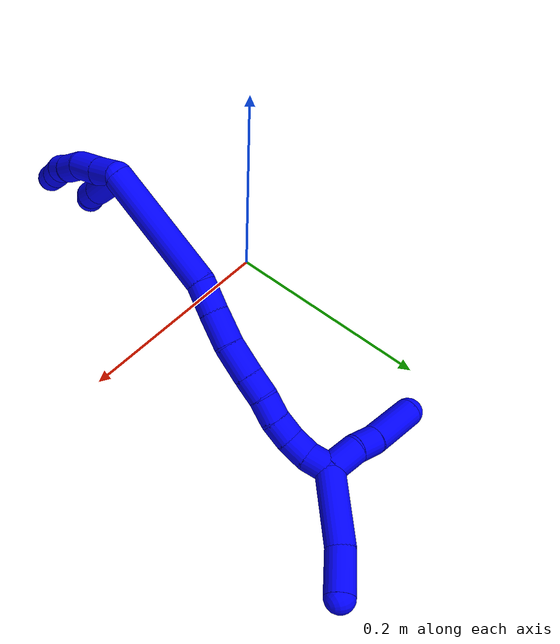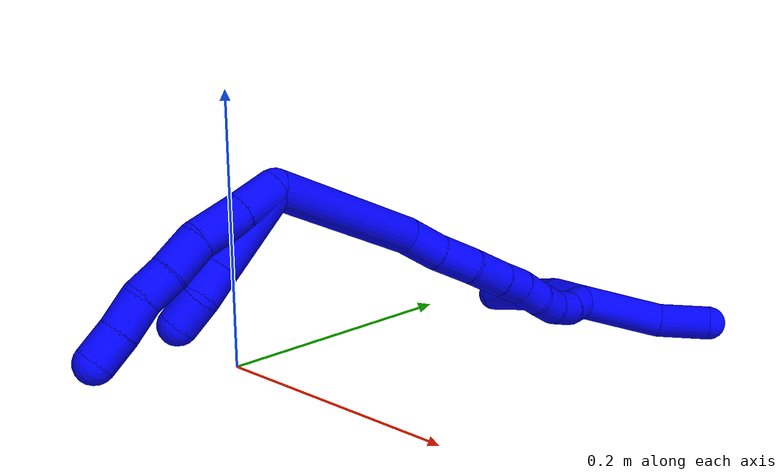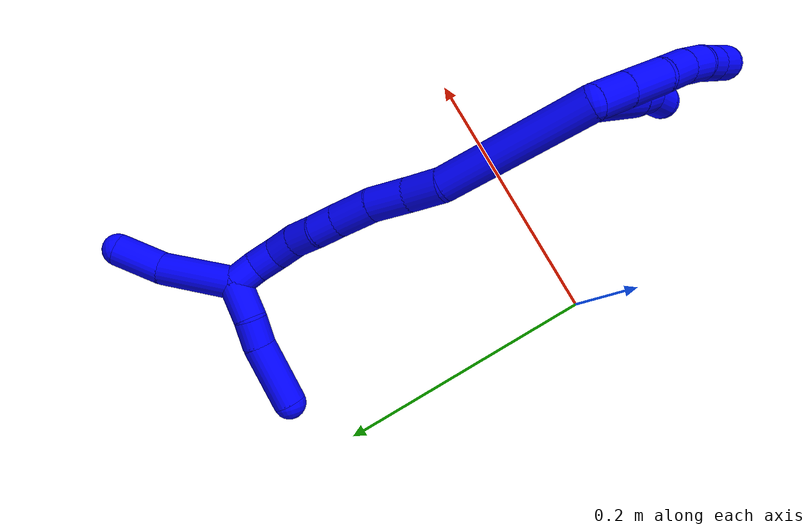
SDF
<sdf version="1.7">
 <world name="default">
  <model name="photoneo_s_sensor">
   <static>1</static>
   <pose>0 0 2 1.57079 1.57079 3.14159</pose>
   <link name="link">
    <inertial><mass>0.1</mass></inertial>
    <sensor name="sensor" type="depth">
     <update_rate>30</update_rate>
     <camera>
      <horizontal_fov>1.22</horizontal_fov>
      <image><width>1920</width><height>1200</height><format>B8G8R8</format></image>
      <clip><near>0.1</near><far>4</far></clip>
      <depth_camera><output>points</output></depth_camera>
     </camera>
     <plugin name="camera_plugin" filename="libgazebo_ros_depth_camera.so">
      <baseline>0.2</baseline>
      <alwaysOn>1</alwaysOn>
      <updateRate>0.0</updateRate>
      <cameraName>camera_ir</cameraName>
      <imageTopicName>/camera/color/image_raw</imageTopicName>
      <cameraInfoTopicName>/camera/color/camera_info</cameraInfoTopicName>
      <depthImageTopicName>/camera/depth/image_raw</depthImageTopicName>
      <depthImageCameraInfoTopicName>/camera/depth/camera_info</depthImageCameraInfoTopicName>
      <pointCloudTopicName>/camera/depth/points</pointCloudTopicName>
      <frameName>fr_optical</frameName>
      <pointCloudCutoff>0.1</pointCloudCutoff>
      <pointCloudCutoffMax>2.0</pointCloudCutoffMax>
      <distortionK1>0</distortionK1>
      <distortionK2>0</distortionK2>
      <distortionK3>0</distortionK3>
      <distortionT1>0</distortionT1>
      <distortionT2>0</distortionT2>
      <CxPrime>0</CxPrime>
      <Cx>0</Cx>
      <Cy>0</Cy>
      <focalLength>0</focalLength>
      <hackBaseline>0</hackBaseline>
     </plugin>
    </sensor>
   </link>
  </model>
  <model name="bin">
   <static>1</static>
   <link name="bottom">
    <collision name="collision-bottom">
     <pose>0 0 -0.01 0 -0 0</pose>
     <geometry><box><size>0.8 0.6 0.02</size></box></geometry>
     <surface>
      <friction><ode><mu>100</mu><mu2>100</mu2></ode></friction>
      <contact><collide_bitmask>65535</collide_bitmask></contact>
     </surface>
    </collision>
   </link>
   <link name="west_wall">
    <collision name="collision-west_wall">
     <pose>-0.41 0 0.1 0 -0 0</pose>
     <geometry><box><size>0.02 0.6 0.2</size></box></geometry>
     <surface>
      <friction><ode><mu>100</mu><mu2>100</mu2></ode></friction>
      <contact><collide_bitmask>65535</collide_bitmask></contact>
     </surface>
    </collision>
   </link>
   <link name="east_wall">
    <collision name="collision-east_wall">
     <pose>0.41 0 0.1 0 -0 0</pose>
     <geometry><box><size>0.02 0.6 0.2</size></box></geometry>
     <surface>
      <friction><ode><mu>100</mu><mu2>100</mu2></ode></friction>
      <contact><collide_bitmask>65535</collide_bitmask></contact>
     </surface>
    </collision>
   </link>
   <link name="south_wall">
    <collision name="collision-south_wall">
     <pose>0 -0.31 0.1 0 -0 0</pose>
     <geometry><box><size>0.8 0.02 0.2</size></box></geometry>
     <surface>
      <friction><ode><mu>100</mu><mu2>100</mu2></ode></friction>
      <contact><collide_bitmask>65535</collide_bitmask></contact>
     </surface>
    </collision>
   </link>
   <link name="north_wall">
    <collision name="collision-north_wall">
     <pose>0 0.31 0.1 0 -0 0</pose>
     <geometry><box><size>0.8 0.02 0.2</size></box></geometry>
     <surface>
      <friction><ode><mu>100</mu><mu2>100</mu2></ode></friction>
      <contact><collide_bitmask>65535</collide_bitmask></contact>
     </surface>
    </collision>
   </link>
  </model>
  <model name="1">
   <static>0</static>
   <link name="1">
    <collision name="collision-cylinder-e_1_2_8">
     <pose>-0.000524 -0.013643 -0.0016 1.68757 -0.038134 -0.042867</pose>
     <geometry><cylinder><radius>0.0125</radius><length>0.027492</length></cylinder></geometry>
     <surface>
      <friction><ode><mu>1.16</mu><mu2>1.16</mu2><slip1>0</slip1><slip2>0</slip2></ode></friction>
      <contact><ode><kp>1e+06</kp><kd>1</kd><max_vel>0</max_vel><min_depth>0.001</min_depth></ode></contact>
     </surface>
    </collision>
    <visual name="visual-cylinder-e_1_2_8">
     <pose>-0.000524 -0.013643 -0.0016 1.68757 -0.038134 -0.042867</pose>
     <geometry><cylinder><radius>0.0125</radius><length>0.027492</length></cylinder></geometry>
     <material><ambient>0 0 1 1</ambient></material>
    </visual>
    <collision name="collision-cylinder-e_2_8_9">
     <pose>-0.001097 -0.043365 -0.004959 1.6797 -0.002995 -0.003341</pose>
     <geometry><cylinder><radius>0.0125</radius><length>0.03235</length></cylinder></geometry>
     <surface>
      <friction><ode><mu>1.16</mu><mu2>1.16</mu2><slip1>0</slip1><slip2>0</slip2></ode></friction>
      <contact><ode><kp>1e+06</kp><kd>1</kd><max_vel>0</max_vel><min_depth>0.001</min_depth></ode></contact>
     </surface>
    </collision>
    <visual name="visual-cylinder-e_2_8_9">
     <pose>-0.001097 -0.043365 -0.004959 1.6797 -0.002995 -0.003341</pose>
     <geometry><cylinder><radius>0.0125</radius><length>0.03235</length></cylinder></geometry>
     <material><ambient>0 0 1 1</ambient></material>
    </visual>
    <collision name="collision-cylinder-e_3_9_10">
     <pose>-0.004646 -0.071767 -0.008189 1.68969 -0.274922 -0.309198</pose>
     <geometry><cylinder><radius>0.0125</radius><length>0.025791</length></cylinder></geometry>
     <surface>
      <friction><ode><mu>1.16</mu><mu2>1.16</mu2><slip1>0</slip1><slip2>0</slip2></ode></friction>
      <contact><ode><kp>1e+06</kp><kd>1</kd><max_vel>0</max_vel><min_depth>0.001</min_depth></ode></contact>
     </surface>
    </collision>
    <visual name="visual-cylinder-e_3_9_10">
     <pose>-0.004646 -0.071767 -0.008189 1.68969 -0.274922 -0.309198</pose>
     <geometry><cylinder><radius>0.0125</radius><length>0.025791</length></cylinder></geometry>
     <material><ambient>0 0 1 1</ambient></material>
    </visual>
    <collision name="collision-cylinder-e_4_10_11">
     <pose>-0.010269 -0.094179 -0.009755 1.58011 -0.207362 -0.209288</pose>
     <geometry><cylinder><radius>0.0125</radius><length>0.020618</length></cylinder></geometry>
     <surface>
      <friction><ode><mu>1.16</mu><mu2>1.16</mu2><slip1>0</slip1><slip2>0</slip2></ode></friction>
      <contact><ode><kp>1e+06</kp><kd>1</kd><max_vel>0</max_vel><min_depth>0.001</min_depth></ode></contact>
     </surface>
    </collision>
    <visual name="visual-cylinder-e_4_10_11">
     <pose>-0.010269 -0.094179 -0.009755 1.58011 -0.207362 -0.209288</pose>
     <geometry><cylinder><radius>0.0125</radius><length>0.020618</length></cylinder></geometry>
     <material><ambient>0 0 1 1</ambient></material>
    </visual>
    <collision name="collision-cylinder-e_5_11_12">
     <pose>-0.017415 -0.114136 -0.009269 1.5121 -0.470156 -0.444237</pose>
     <geometry><cylinder><radius>0.0125</radius><length>0.02218</length></cylinder></geometry>
     <surface>
      <friction><ode><mu>1.16</mu><mu2>1.16</mu2><slip1>0</slip1><slip2>0</slip2></ode></friction>
      <contact><ode><kp>1e+06</kp><kd>1</kd><max_vel>0</max_vel><min_depth>0.001</min_depth></ode></contact>
     </surface>
    </collision>
    <visual name="visual-cylinder-e_5_11_12">
     <pose>-0.017415 -0.114136 -0.009269 1.5121 -0.470156 -0.444237</pose>
     <geometry><cylinder><radius>0.0125</radius><length>0.02218</length></cylinder></geometry>
     <material><ambient>0 0 1 1</ambient></material>
    </visual>
    <collision name="collision-cylinder-e_6_12_6">
     <pose>-0.026465 -0.133989 -0.00803 1.5049 -0.382505 -0.358632</pose>
     <geometry><cylinder><radius>0.0125</radius><length>0.021568</length></cylinder></geometry>
     <surface>
      <friction><ode><mu>1.16</mu><mu2>1.16</mu2><slip1>0</slip1><slip2>0</slip2></ode></friction>
      <contact><ode><kp>1e+06</kp><kd>1</kd><max_vel>0</max_vel><min_depth>0.001</min_depth></ode></contact>
     </surface>
    </collision>
    <visual name="visual-cylinder-e_6_12_6">
     <pose>-0.026465 -0.133989 -0.00803 1.5049 -0.382505 -0.358632</pose>
     <geometry><cylinder><radius>0.0125</radius><length>0.021568</length></cylinder></geometry>
     <material><ambient>0 0 1 1</ambient></material>
    </visual>
    <collision name="collision-cylinder-e_1_2_13">
     <pose>-0.012259 -0.026007 0.001321 1.52003 -0.439991 -0.418851</pose>
     <geometry><cylinder><radius>0.0125</radius><length>0.057563</length></cylinder></geometry>
     <surface>
      <friction><ode><mu>1.16</mu><mu2>1.16</mu2><slip1>0</slip1><slip2>0</slip2></ode></friction>
      <contact><ode><kp>1e+06</kp><kd>1</kd><max_vel>0</max_vel><min_depth>0.001</min_depth></ode></contact>
     </surface>
    </collision>
    <visual name="visual-cylinder-e_1_2_13">
     <pose>-0.012259 -0.026007 0.001321 1.52003 -0.439991 -0.418851</pose>
     <geometry><cylinder><radius>0.0125</radius><length>0.057563</length></cylinder></geometry>
     <material><ambient>0 0 1 1</ambient></material>
    </visual>
    <collision name="collision-cylinder-e_2_13_14">
     <pose>-0.028938 -0.061894 0.002107 1.62493 -0.420117 -0.442759</pose>
     <geometry><cylinder><radius>0.0125</radius><length>0.021675</length></cylinder></geometry>
     <surface>
      <friction><ode><mu>1.16</mu><mu2>1.16</mu2><slip1>0</slip1><slip2>0</slip2></ode></friction>
      <contact><ode><kp>1e+06</kp><kd>1</kd><max_vel>0</max_vel><min_depth>0.001</min_depth></ode></contact>
     </surface>
    </collision>
    <visual name="visual-cylinder-e_2_13_14">
     <pose>-0.028938 -0.061894 0.002107 1.62493 -0.420117 -0.442759</pose>
     <geometry><cylinder><radius>0.0125</radius><length>0.021675</length></cylinder></geometry>
     <material><ambient>0 0 1 1</ambient></material>
    </visual>
    <collision name="collision-cylinder-e_3_14_5">
     <pose>-0.037812 -0.080661 0.004566 1.24576 -0.443348 -0.320977</pose>
     <geometry><cylinder><radius>0.0125</radius><length>0.020762</length></cylinder></geometry>
     <surface>
      <friction><ode><mu>1.16</mu><mu2>1.16</mu2><slip1>0</slip1><slip2>0</slip2></ode></friction>
      <contact><ode><kp>1e+06</kp><kd>1</kd><max_vel>0</max_vel><min_depth>0.001</min_depth></ode></contact>
     </surface>
    </collision>
    <visual name="visual-cylinder-e_3_14_5">
     <pose>-0.037812 -0.080661 0.004566 1.24576 -0.443348 -0.320977</pose>
     <geometry><cylinder><radius>0.0125</radius><length>0.020762</length></cylinder></geometry>
     <material><ambient>0 0 1 1</ambient></material>
    </visual>
    <collision name="collision-cylinder-e_1_2_15">
     <pose>-0.039762 0.037946 0.012285 -1.25771 -0.783849 0.584055</pose>
     <geometry><cylinder><radius>0.0125</radius><length>0.112638</length></cylinder></geometry>
     <surface>
      <friction><ode><mu>1.16</mu><mu2>1.16</mu2><slip1>0</slip1><slip2>0</slip2></ode></friction>
      <contact><ode><kp>1e+06</kp><kd>1</kd><max_vel>0</max_vel><min_depth>0.001</min_depth></ode></contact>
     </surface>
    </collision>
    <visual name="visual-cylinder-e_1_2_15">
     <pose>-0.039762 0.037946 0.012285 -1.25771 -0.783849 0.584055</pose>
     <geometry><cylinder><radius>0.0125</radius><length>0.112638</length></cylinder></geometry>
     <material><ambient>0 0 1 1</ambient></material>
    </visual>
    <collision name="collision-cylinder-e_2_15_16">
     <pose>-0.090734 0.083637 0.024782 -1.54329 -0.966077 0.943625</pose>
     <geometry><cylinder><radius>0.0125</radius><length>0.027255</length></cylinder></geometry>
     <surface>
      <friction><ode><mu>1.16</mu><mu2>1.16</mu2><slip1>0</slip1><slip2>0</slip2></ode></friction>
      <contact><ode><kp>1e+06</kp><kd>1</kd><max_vel>0</max_vel><min_depth>0.001</min_depth></ode></contact>
     </surface>
    </collision>
    <visual name="visual-cylinder-e_2_15_16">
     <pose>-0.090734 0.083637 0.024782 -1.54329 -0.966077 0.943625</pose>
     <geometry><cylinder><radius>0.0125</radius><length>0.027255</length></cylinder></geometry>
     <material><ambient>0 0 1 1</ambient></material>
    </visual>
    <collision name="collision-cylinder-e_3_16_17">
     <pose>-0.113209 0.100935 0.024983 -1.57212 -0.867407 0.868419</pose>
     <geometry><cylinder><radius>0.0125</radius><length>0.02954</length></cylinder></geometry>
     <surface>
      <friction><ode><mu>1.16</mu><mu2>1.16</mu2><slip1>0</slip1><slip2>0</slip2></ode></friction>
      <contact><ode><kp>1e+06</kp><kd>1</kd><max_vel>0</max_vel><min_depth>0.001</min_depth></ode></contact>
     </surface>
    </collision>
    <visual name="visual-cylinder-e_3_16_17">
     <pose>-0.113209 0.100935 0.024983 -1.57212 -0.867407 0.868419</pose>
     <geometry><cylinder><radius>0.0125</radius><length>0.02954</length></cylinder></geometry>
     <material><ambient>0 0 1 1</ambient></material>
    </visual>
    <collision name="collision-cylinder-e_4_17_18">
     <pose>-0.135714 0.119782 0.027152 -1.34023 -0.866728 0.702882</pose>
     <geometry><cylinder><radius>0.0125</radius><length>0.029494</length></cylinder></geometry>
     <surface>
      <friction><ode><mu>1.16</mu><mu2>1.16</mu2><slip1>0</slip1><slip2>0</slip2></ode></friction>
      <contact><ode><kp>1e+06</kp><kd>1</kd><max_vel>0</max_vel><min_depth>0.001</min_depth></ode></contact>
     </surface>
    </collision>
    <visual name="visual-cylinder-e_4_17_18">
     <pose>-0.135714 0.119782 0.027152 -1.34023 -0.866728 0.702882</pose>
     <geometry><cylinder><radius>0.0125</radius><length>0.029494</length></cylinder></geometry>
     <material><ambient>0 0 1 1</ambient></material>
    </visual>
    <collision name="collision-cylinder-e_5_18_19">
     <pose>-0.154435 0.135813 0.031062 -1.31965 -0.821725 0.651877</pose>
     <geometry><cylinder><radius>0.0125</radius><length>0.020432</length></cylinder></geometry>
     <surface>
      <friction><ode><mu>1.16</mu><mu2>1.16</mu2><slip1>0</slip1><slip2>0</slip2></ode></friction>
      <contact><ode><kp>1e+06</kp><kd>1</kd><max_vel>0</max_vel><min_depth>0.001</min_depth></ode></contact>
     </surface>
    </collision>
    <visual name="visual-cylinder-e_5_18_19">
     <pose>-0.154435 0.135813 0.031062 -1.31965 -0.821725 0.651877</pose>
     <geometry><cylinder><radius>0.0125</radius><length>0.020432</length></cylinder></geometry>
     <material><ambient>0 0 1 1</ambient></material>
    </visual>
    <collision name="collision-cylinder-e_6_19_20">
     <pose>-0.170551 0.148003 0.034016 -1.3497 -0.996479 0.821145</pose>
     <geometry><cylinder><radius>0.0125</radius><length>0.020568</length></cylinder></geometry>
     <surface>
      <friction><ode><mu>1.16</mu><mu2>1.16</mu2><slip1>0</slip1><slip2>0</slip2></ode></friction>
      <contact><ode><kp>1e+06</kp><kd>1</kd><max_vel>0</max_vel><min_depth>0.001</min_depth></ode></contact>
     </surface>
    </collision>
    <visual name="visual-cylinder-e_6_19_20">
     <pose>-0.170551 0.148003 0.034016 -1.3497 -0.996479 0.821145</pose>
     <geometry><cylinder><radius>0.0125</radius><length>0.020568</length></cylinder></geometry>
     <material><ambient>0 0 1 1</ambient></material>
    </visual>
    <collision name="collision-cylinder-e_7_20_21">
     <pose>-0.186885 0.15922 0.038035 -1.11957 -0.876762 0.571472</pose>
     <geometry><cylinder><radius>0.0125</radius><length>0.020035</length></cylinder></geometry>
     <surface>
      <friction><ode><mu>1.16</mu><mu2>1.16</mu2><slip1>0</slip1><slip2>0</slip2></ode></friction>
      <contact><ode><kp>1e+06</kp><kd>1</kd><max_vel>0</max_vel><min_depth>0.001</min_depth></ode></contact>
     </surface>
    </collision>
    <visual name="visual-cylinder-e_7_20_21">
     <pose>-0.186885 0.15922 0.038035 -1.11957 -0.876762 0.571472</pose>
     <geometry><cylinder><radius>0.0125</radius><length>0.020035</length></cylinder></geometry>
     <material><ambient>0 0 1 1</ambient></material>
    </visual>
    <collision name="collision-cylinder-e_8_21_22">
     <pose>-0.200396 0.172599 0.043761 -1.20316 -0.618901 0.432101</pose>
     <geometry><cylinder><radius>0.0125</radius><length>0.020031</length></cylinder></geometry>
     <surface>
      <friction><ode><mu>1.16</mu><mu2>1.16</mu2><slip1>0</slip1><slip2>0</slip2></ode></friction>
      <contact><ode><kp>1e+06</kp><kd>1</kd><max_vel>0</max_vel><min_depth>0.001</min_depth></ode></contact>
     </surface>
    </collision>
    <visual name="visual-cylinder-e_8_21_22">
     <pose>-0.200396 0.172599 0.043761 -1.20316 -0.618901 0.432101</pose>
     <geometry><cylinder><radius>0.0125</radius><length>0.020031</length></cylinder></geometry>
     <material><ambient>0 0 1 1</ambient></material>
    </visual>
    <collision name="collision-cylinder-e_9_22_1">
     <pose>-0.209207 0.188932 0.050571 -1.15237 -0.304669 0.19884</pose>
     <geometry><cylinder><radius>0.0125</radius><length>0.020008</length></cylinder></geometry>
     <surface>
      <friction><ode><mu>1.16</mu><mu2>1.16</mu2><slip1>0</slip1><slip2>0</slip2></ode></friction>
      <contact><ode><kp>1e+06</kp><kd>1</kd><max_vel>0</max_vel><min_depth>0.001</min_depth></ode></contact>
     </surface>
    </collision>
    <visual name="visual-cylinder-e_9_22_1">
     <pose>-0.209207 0.188932 0.050571 -1.15237 -0.304669 0.19884</pose>
     <geometry><cylinder><radius>0.0125</radius><length>0.020008</length></cylinder></geometry>
     <material><ambient>0 0 1 1</ambient></material>
    </visual>
    <collision name="collision-cylinder-e_1_1_23">
     <pose>-0.231953 0.218169 0.042204 -2.10888 -0.690617 1.12954</pose>
     <geometry><cylinder><radius>0.0125</radius><length>0.061992</length></cylinder></geometry>
     <surface>
      <friction><ode><mu>1.16</mu><mu2>1.16</mu2><slip1>0</slip1><slip2>0</slip2></ode></friction>
      <contact><ode><kp>1e+06</kp><kd>1</kd><max_vel>0</max_vel><min_depth>0.001</min_depth></ode></contact>
     </surface>
    </collision>
    <visual name="visual-cylinder-e_1_1_23">
     <pose>-0.231953 0.218169 0.042204 -2.10888 -0.690617 1.12954</pose>
     <geometry><cylinder><radius>0.0125</radius><length>0.061992</length></cylinder></geometry>
     <material><ambient>0 0 1 1</ambient></material>
    </visual>
    <collision name="collision-cylinder-e_2_23_4">
     <pose>-0.259503 0.251653 0.018466 -2.29593 -0.423245 0.890887</pose>
     <geometry><cylinder><radius>0.0125</radius><length>0.038008</length></cylinder></geometry>
     <surface>
      <friction><ode><mu>1.16</mu><mu2>1.16</mu2><slip1>0</slip1><slip2>0</slip2></ode></friction>
      <contact><ode><kp>1e+06</kp><kd>1</kd><max_vel>0</max_vel><min_depth>0.001</min_depth></ode></contact>
     </surface>
    </collision>
    <visual name="visual-cylinder-e_2_23_4">
     <pose>-0.259503 0.251653 0.018466 -2.29593 -0.423245 0.890887</pose>
     <geometry><cylinder><radius>0.0125</radius><length>0.038008</length></cylinder></geometry>
     <material><ambient>0 0 1 1</ambient></material>
    </visual>
    <collision name="collision-cylinder-e_1_1_24">
     <pose>-0.20994 0.196358 0.06872 0.090385 0.156997 0.007115</pose>
     <geometry><cylinder><radius>0.0125</radius><length>0.029016</length></cylinder></geometry>
     <surface>
      <friction><ode><mu>1.16</mu><mu2>1.16</mu2><slip1>0</slip1><slip2>0</slip2></ode></friction>
      <contact><ode><kp>1e+06</kp><kd>1</kd><max_vel>0</max_vel><min_depth>0.001</min_depth></ode></contact>
     </surface>
    </collision>
    <visual name="visual-cylinder-e_1_1_24">
     <pose>-0.20994 0.196358 0.06872 0.090385 0.156997 0.007115</pose>
     <geometry><cylinder><radius>0.0125</radius><length>0.029016</length></cylinder></geometry>
     <material><ambient>0 0 1 1</ambient></material>
    </visual>
    <collision name="collision-cylinder-e_2_24_25">
     <pose>-0.208616 0.194257 0.093565 0.076258 -0.08887 -0.003392</pose>
     <geometry><cylinder><radius>0.0125</radius><length>0.021292</length></cylinder></geometry>
     <surface>
      <friction><ode><mu>1.16</mu><mu2>1.16</mu2><slip1>0</slip1><slip2>0</slip2></ode></friction>
      <contact><ode><kp>1e+06</kp><kd>1</kd><max_vel>0</max_vel><min_depth>0.001</min_depth></ode></contact>
     </surface>
    </collision>
    <visual name="visual-cylinder-e_2_24_25">
     <pose>-0.208616 0.194257 0.093565 0.076258 -0.08887 -0.003392</pose>
     <geometry><cylinder><radius>0.0125</radius><length>0.021292</length></cylinder></geometry>
     <material><ambient>0 0 1 1</ambient></material>
    </visual>
    <collision name="collision-cylinder-e_3_25_3">
     <pose>-0.209208 0.188181 0.128416 0.213669 0.014207 0.001524</pose>
     <geometry><cylinder><radius>0.0125</radius><length>0.049691</length></cylinder></geometry>
     <surface>
      <friction><ode><mu>1.16</mu><mu2>1.16</mu2><slip1>0</slip1><slip2>0</slip2></ode></friction>
      <contact><ode><kp>1e+06</kp><kd>1</kd><max_vel>0</max_vel><min_depth>0.001</min_depth></ode></contact>
     </surface>
    </collision>
    <visual name="visual-cylinder-e_3_25_3">
     <pose>-0.209208 0.188181 0.128416 0.213669 0.014207 0.001524</pose>
     <geometry><cylinder><radius>0.0125</radius><length>0.049691</length></cylinder></geometry>
     <material><ambient>0 0 1 1</ambient></material>
    </visual>
    <collision name="collision-sphere-3">
     <pose>-0.208855 0.182913 0.152694 0 -0 0</pose>
     <geometry><sphere><radius>0.0125</radius></sphere></geometry>
     <surface>
      <friction><ode><mu>1.16</mu><mu2>1.16</mu2><slip1>0</slip1><slip2>0</slip2></ode></friction>
      <contact><ode><kp>1e+06</kp><kd>1</kd><max_vel>0</max_vel><min_depth>0.001</min_depth></ode></contact>
     </surface>
    </collision>
    <visual name="visual-sphere-3">
     <pose>-0.208855 0.182913 0.152694 0 -0 0</pose>
     <geometry><sphere><radius>0.0125</radius></sphere></geometry>
     <material><ambient>0 0 1 1</ambient></material>
    </visual>
    <collision name="collision-sphere-25">
     <pose>-0.209561 0.193449 0.104138 0 -0 0</pose>
     <geometry><sphere><radius>0.0125</radius></sphere></geometry>
     <surface>
      <friction><ode><mu>1.16</mu><mu2>1.16</mu2><slip1>0</slip1><slip2>0</slip2></ode></friction>
      <contact><ode><kp>1e+06</kp><kd>1</kd><max_vel>0</max_vel><min_depth>0.001</min_depth></ode></contact>
     </surface>
    </collision>
    <visual name="visual-sphere-25">
     <pose>-0.209561 0.193449 0.104138 0 -0 0</pose>
     <geometry><sphere><radius>0.0125</radius></sphere></geometry>
     <material><ambient>0 0 1 1</ambient></material>
    </visual>
    <collision name="collision-sphere-24">
     <pose>-0.207671 0.195065 0.082991 0 -0 0</pose>
     <geometry><sphere><radius>0.0125</radius></sphere></geometry>
     <surface>
      <friction><ode><mu>1.16</mu><mu2>1.16</mu2><slip1>0</slip1><slip2>0</slip2></ode></friction>
      <contact><ode><kp>1e+06</kp><kd>1</kd><max_vel>0</max_vel><min_depth>0.001</min_depth></ode></contact>
     </surface>
    </collision>
    <visual name="visual-sphere-24">
     <pose>-0.207671 0.195065 0.082991 0 -0 0</pose>
     <geometry><sphere><radius>0.0125</radius></sphere></geometry>
     <material><ambient>0 0 1 1</ambient></material>
    </visual>
    <collision name="collision-sphere-4">
     <pose>-0.267308 0.264621 0.006975 0 -0 0</pose>
     <geometry><sphere><radius>0.0125</radius></sphere></geometry>
     <surface>
      <friction><ode><mu>1.16</mu><mu2>1.16</mu2><slip1>0</slip1><slip2>0</slip2></ode></friction>
      <contact><ode><kp>1e+06</kp><kd>1</kd><max_vel>0</max_vel><min_depth>0.001</min_depth></ode></contact>
     </surface>
    </collision>
    <visual name="visual-sphere-4">
     <pose>-0.267308 0.264621 0.006975 0 -0 0</pose>
     <geometry><sphere><radius>0.0125</radius></sphere></geometry>
     <material><ambient>0 0 1 1</ambient></material>
    </visual>
    <collision name="collision-sphere-23">
     <pose>-0.251698 0.238686 0.029958 0 -0 0</pose>
     <geometry><sphere><radius>0.0125</radius></sphere></geometry>
     <surface>
      <friction><ode><mu>1.16</mu><mu2>1.16</mu2><slip1>0</slip1><slip2>0</slip2></ode></friction>
      <contact><ode><kp>1e+06</kp><kd>1</kd><max_vel>0</max_vel><min_depth>0.001</min_depth></ode></contact>
     </surface>
    </collision>
    <visual name="visual-sphere-23">
     <pose>-0.251698 0.238686 0.029958 0 -0 0</pose>
     <geometry><sphere><radius>0.0125</radius></sphere></geometry>
     <material><ambient>0 0 1 1</ambient></material>
    </visual>
    <collision name="collision-sphere-1">
     <pose>-0.212208 0.197652 0.054449 0 -0 0</pose>
     <geometry><sphere><radius>0.0125</radius></sphere></geometry>
     <surface>
      <friction><ode><mu>1.16</mu><mu2>1.16</mu2><slip1>0</slip1><slip2>0</slip2></ode></friction>
      <contact><ode><kp>1e+06</kp><kd>1</kd><max_vel>0</max_vel><min_depth>0.001</min_depth></ode></contact>
     </surface>
    </collision>
    <visual name="visual-sphere-1">
     <pose>-0.212208 0.197652 0.054449 0 -0 0</pose>
     <geometry><sphere><radius>0.0125</radius></sphere></geometry>
     <material><ambient>0 0 1 1</ambient></material>
    </visual>
    <collision name="collision-sphere-22">
     <pose>-0.206206 0.180211 0.046693 0 -0 0</pose>
     <geometry><sphere><radius>0.0125</radius></sphere></geometry>
     <surface>
      <friction><ode><mu>1.16</mu><mu2>1.16</mu2><slip1>0</slip1><slip2>0</slip2></ode></friction>
      <contact><ode><kp>1e+06</kp><kd>1</kd><max_vel>0</max_vel><min_depth>0.001</min_depth></ode></contact>
     </surface>
    </collision>
    <visual name="visual-sphere-22">
     <pose>-0.206206 0.180211 0.046693 0 -0 0</pose>
     <geometry><sphere><radius>0.0125</radius></sphere></geometry>
     <material><ambient>0 0 1 1</ambient></material>
    </visual>
    <collision name="collision-sphere-21">
     <pose>-0.194585 0.164986 0.040829 0 -0 0</pose>
     <geometry><sphere><radius>0.0125</radius></sphere></geometry>
     <surface>
      <friction><ode><mu>1.16</mu><mu2>1.16</mu2><slip1>0</slip1><slip2>0</slip2></ode></friction>
      <contact><ode><kp>1e+06</kp><kd>1</kd><max_vel>0</max_vel><min_depth>0.001</min_depth></ode></contact>
     </surface>
    </collision>
    <visual name="visual-sphere-21">
     <pose>-0.194585 0.164986 0.040829 0 -0 0</pose>
     <geometry><sphere><radius>0.0125</radius></sphere></geometry>
     <material><ambient>0 0 1 1</ambient></material>
    </visual>
    <collision name="collision-sphere-12">
     <pose>-0.022439 -0.124006 -0.008689 0 -0 0</pose>
     <geometry><sphere><radius>0.0125</radius></sphere></geometry>
     <surface>
      <friction><ode><mu>1.16</mu><mu2>1.16</mu2><slip1>0</slip1><slip2>0</slip2></ode></friction>
      <contact><ode><kp>1e+06</kp><kd>1</kd><max_vel>0</max_vel><min_depth>0.001</min_depth></ode></contact>
     </surface>
    </collision>
    <visual name="visual-sphere-12">
     <pose>-0.022439 -0.124006 -0.008689 0 -0 0</pose>
     <geometry><sphere><radius>0.0125</radius></sphere></geometry>
     <material><ambient>0 0 1 1</ambient></material>
    </visual>
    <collision name="collision-sphere-11">
     <pose>-0.012391 -0.104267 -0.009849 0 -0 0</pose>
     <geometry><sphere><radius>0.0125</radius></sphere></geometry>
     <surface>
      <friction><ode><mu>1.16</mu><mu2>1.16</mu2><slip1>0</slip1><slip2>0</slip2></ode></friction>
      <contact><ode><kp>1e+06</kp><kd>1</kd><max_vel>0</max_vel><min_depth>0.001</min_depth></ode></contact>
     </surface>
    </collision>
    <visual name="visual-sphere-11">
     <pose>-0.012391 -0.104267 -0.009849 0 -0 0</pose>
     <geometry><sphere><radius>0.0125</radius></sphere></geometry>
     <material><ambient>0 0 1 1</ambient></material>
    </visual>
    <collision name="collision-sphere-10">
     <pose>-0.008147 -0.084091 -0.009661 0 -0 0</pose>
     <geometry><sphere><radius>0.0125</radius></sphere></geometry>
     <surface>
      <friction><ode><mu>1.16</mu><mu2>1.16</mu2><slip1>0</slip1><slip2>0</slip2></ode></friction>
      <contact><ode><kp>1e+06</kp><kd>1</kd><max_vel>0</max_vel><min_depth>0.001</min_depth></ode></contact>
     </surface>
    </collision>
    <visual name="visual-sphere-10">
     <pose>-0.008147 -0.084091 -0.009661 0 -0 0</pose>
     <geometry><sphere><radius>0.0125</radius></sphere></geometry>
     <material><ambient>0 0 1 1</ambient></material>
    </visual>
    <collision name="collision-sphere-9">
     <pose>-0.001145 -0.059444 -0.006717 0 -0 0</pose>
     <geometry><sphere><radius>0.0125</radius></sphere></geometry>
     <surface>
      <friction><ode><mu>1.16</mu><mu2>1.16</mu2><slip1>0</slip1><slip2>0</slip2></ode></friction>
      <contact><ode><kp>1e+06</kp><kd>1</kd><max_vel>0</max_vel><min_depth>0.001</min_depth></ode></contact>
     </surface>
    </collision>
    <visual name="visual-sphere-9">
     <pose>-0.001145 -0.059444 -0.006717 0 -0 0</pose>
     <geometry><sphere><radius>0.0125</radius></sphere></geometry>
     <material><ambient>0 0 1 1</ambient></material>
    </visual>
    <collision name="collision-sphere-2">
     <geometry><sphere><radius>0.0125</radius></sphere></geometry>
     <surface>
      <friction><ode><mu>1.16</mu><mu2>1.16</mu2><slip1>0</slip1><slip2>0</slip2></ode></friction>
      <contact><ode><kp>1e+06</kp><kd>1</kd><max_vel>0</max_vel><min_depth>0.001</min_depth></ode></contact>
     </surface>
    </collision>
    <visual name="visual-sphere-2">
     <geometry><sphere><radius>0.0125</radius></sphere></geometry>
     <material><ambient>0 0 1 1</ambient></material>
    </visual>
    <collision name="collision-sphere-19">
     <pose>-0.161917 0.142552 0.032791 0 -0 0</pose>
     <geometry><sphere><radius>0.0125</radius></sphere></geometry>
     <surface>
      <friction><ode><mu>1.16</mu><mu2>1.16</mu2><slip1>0</slip1><slip2>0</slip2></ode></friction>
      <contact><ode><kp>1e+06</kp><kd>1</kd><max_vel>0</max_vel><min_depth>0.001</min_depth></ode></contact>
     </surface>
    </collision>
    <visual name="visual-sphere-19">
     <pose>-0.161917 0.142552 0.032791 0 -0 0</pose>
     <geometry><sphere><radius>0.0125</radius></sphere></geometry>
     <material><ambient>0 0 1 1</ambient></material>
    </visual>
    <collision name="collision-sphere-8">
     <pose>-0.001048 -0.027285 -0.003201 0 -0 0</pose>
     <geometry><sphere><radius>0.0125</radius></sphere></geometry>
     <surface>
      <friction><ode><mu>1.16</mu><mu2>1.16</mu2><slip1>0</slip1><slip2>0</slip2></ode></friction>
      <contact><ode><kp>1e+06</kp><kd>1</kd><max_vel>0</max_vel><min_depth>0.001</min_depth></ode></contact>
     </surface>
    </collision>
    <visual name="visual-sphere-8">
     <pose>-0.001048 -0.027285 -0.003201 0 -0 0</pose>
     <geometry><sphere><radius>0.0125</radius></sphere></geometry>
     <material><ambient>0 0 1 1</ambient></material>
    </visual>
    <collision name="collision-sphere-6">
     <pose>-0.03049 -0.143972 -0.007371 0 -0 0</pose>
     <geometry><sphere><radius>0.0125</radius></sphere></geometry>
     <surface>
      <friction><ode><mu>1.16</mu><mu2>1.16</mu2><slip1>0</slip1><slip2>0</slip2></ode></friction>
      <contact><ode><kp>1e+06</kp><kd>1</kd><max_vel>0</max_vel><min_depth>0.001</min_depth></ode></contact>
     </surface>
    </collision>
    <visual name="visual-sphere-6">
     <pose>-0.03049 -0.143972 -0.007371 0 -0 0</pose>
     <geometry><sphere><radius>0.0125</radius></sphere></geometry>
     <material><ambient>0 0 1 1</ambient></material>
    </visual>
    <collision name="collision-sphere-13">
     <pose>-0.024518 -0.052014 0.002643 0 -0 0</pose>
     <geometry><sphere><radius>0.0125</radius></sphere></geometry>
     <surface>
      <friction><ode><mu>1.16</mu><mu2>1.16</mu2><slip1>0</slip1><slip2>0</slip2></ode></friction>
      <contact><ode><kp>1e+06</kp><kd>1</kd><max_vel>0</max_vel><min_depth>0.001</min_depth></ode></contact>
     </surface>
    </collision>
    <visual name="visual-sphere-13">
     <pose>-0.024518 -0.052014 0.002643 0 -0 0</pose>
     <geometry><sphere><radius>0.0125</radius></sphere></geometry>
     <material><ambient>0 0 1 1</ambient></material>
    </visual>
    <collision name="collision-sphere-14">
     <pose>-0.033358 -0.071775 0.001572 0 -0 0</pose>
     <geometry><sphere><radius>0.0125</radius></sphere></geometry>
     <surface>
      <friction><ode><mu>1.16</mu><mu2>1.16</mu2><slip1>0</slip1><slip2>0</slip2></ode></friction>
      <contact><ode><kp>1e+06</kp><kd>1</kd><max_vel>0</max_vel><min_depth>0.001</min_depth></ode></contact>
     </surface>
    </collision>
    <visual name="visual-sphere-14">
     <pose>-0.033358 -0.071775 0.001572 0 -0 0</pose>
     <geometry><sphere><radius>0.0125</radius></sphere></geometry>
     <material><ambient>0 0 1 1</ambient></material>
    </visual>
    <collision name="collision-sphere-5">
     <pose>-0.042265 -0.089547 0.007561 0 -0 0</pose>
     <geometry><sphere><radius>0.0125</radius></sphere></geometry>
     <surface>
      <friction><ode><mu>1.16</mu><mu2>1.16</mu2><slip1>0</slip1><slip2>0</slip2></ode></friction>
      <contact><ode><kp>1e+06</kp><kd>1</kd><max_vel>0</max_vel><min_depth>0.001</min_depth></ode></contact>
     </surface>
    </collision>
    <visual name="visual-sphere-5">
     <pose>-0.042265 -0.089547 0.007561 0 -0 0</pose>
     <geometry><sphere><radius>0.0125</radius></sphere></geometry>
     <material><ambient>0 0 1 1</ambient></material>
    </visual>
    <collision name="collision-sphere-15">
     <pose>-0.079523 0.075892 0.024569 0 -0 0</pose>
     <geometry><sphere><radius>0.0125</radius></sphere></geometry>
     <surface>
      <friction><ode><mu>1.16</mu><mu2>1.16</mu2><slip1>0</slip1><slip2>0</slip2></ode></friction>
      <contact><ode><kp>1e+06</kp><kd>1</kd><max_vel>0</max_vel><min_depth>0.001</min_depth></ode></contact>
     </surface>
    </collision>
    <visual name="visual-sphere-15">
     <pose>-0.079523 0.075892 0.024569 0 -0 0</pose>
     <geometry><sphere><radius>0.0125</radius></sphere></geometry>
     <material><ambient>0 0 1 1</ambient></material>
    </visual>
    <collision name="collision-sphere-16">
     <pose>-0.101945 0.091382 0.024995 0 -0 0</pose>
     <geometry><sphere><radius>0.0125</radius></sphere></geometry>
     <surface>
      <friction><ode><mu>1.16</mu><mu2>1.16</mu2><slip1>0</slip1><slip2>0</slip2></ode></friction>
      <contact><ode><kp>1e+06</kp><kd>1</kd><max_vel>0</max_vel><min_depth>0.001</min_depth></ode></contact>
     </surface>
    </collision>
    <visual name="visual-sphere-16">
     <pose>-0.101945 0.091382 0.024995 0 -0 0</pose>
     <geometry><sphere><radius>0.0125</radius></sphere></geometry>
     <material><ambient>0 0 1 1</ambient></material>
    </visual>
    <collision name="collision-sphere-17">
     <pose>-0.124473 0.110488 0.02497 0 -0 0</pose>
     <geometry><sphere><radius>0.0125</radius></sphere></geometry>
     <surface>
      <friction><ode><mu>1.16</mu><mu2>1.16</mu2><slip1>0</slip1><slip2>0</slip2></ode></friction>
      <contact><ode><kp>1e+06</kp><kd>1</kd><max_vel>0</max_vel><min_depth>0.001</min_depth></ode></contact>
     </surface>
    </collision>
    <visual name="visual-sphere-17">
     <pose>-0.124473 0.110488 0.02497 0 -0 0</pose>
     <geometry><sphere><radius>0.0125</radius></sphere></geometry>
     <material><ambient>0 0 1 1</ambient></material>
    </visual>
    <collision name="collision-sphere-18">
     <pose>-0.146954 0.129075 0.029333 0 -0 0</pose>
     <geometry><sphere><radius>0.0125</radius></sphere></geometry>
     <surface>
      <friction><ode><mu>1.16</mu><mu2>1.16</mu2><slip1>0</slip1><slip2>0</slip2></ode></friction>
      <contact><ode><kp>1e+06</kp><kd>1</kd><max_vel>0</max_vel><min_depth>0.001</min_depth></ode></contact>
     </surface>
    </collision>
    <visual name="visual-sphere-18">
     <pose>-0.146954 0.129075 0.029333 0 -0 0</pose>
     <geometry><sphere><radius>0.0125</radius></sphere></geometry>
     <material><ambient>0 0 1 1</ambient></material>
    </visual>
    <collision name="collision-sphere-20">
     <pose>-0.179185 0.153454 0.035241 0 -0 0</pose>
     <geometry><sphere><radius>0.0125</radius></sphere></geometry>
     <surface>
      <friction><ode><mu>1.16</mu><mu2>1.16</mu2><slip1>0</slip1><slip2>0</slip2></ode></friction>
      <contact><ode><kp>1e+06</kp><kd>1</kd><max_vel>0</max_vel><min_depth>0.001</min_depth></ode></contact>
     </surface>
    </collision>
    <visual name="visual-sphere-20">
     <pose>-0.179185 0.153454 0.035241 0 -0 0</pose>
     <geometry><sphere><radius>0.0125</radius></sphere></geometry>
     <material><ambient>0 0 1 1</ambient></material>
    </visual>
    <inertial>
     <pose>-0.108712 0.074778 0.027319 0 -0 0</pose>
     <mass>0.75</mass>
     <inertia>
      <ixx>0.000179</ixx>
      <ixy>0</ixy>
      <ixz>0</ixz>
      <iyy>0.000181</iyy>
      <iyz>0</iyz>
      <izz>5.8e-05</izz>
     </inertia>
    </inertial>
   </link>
   <pose>0.109546 -0.048121 0.155624 1.94459 -1.14644 -2.17907</pose>
  </model>
 </world>
</sdf>
